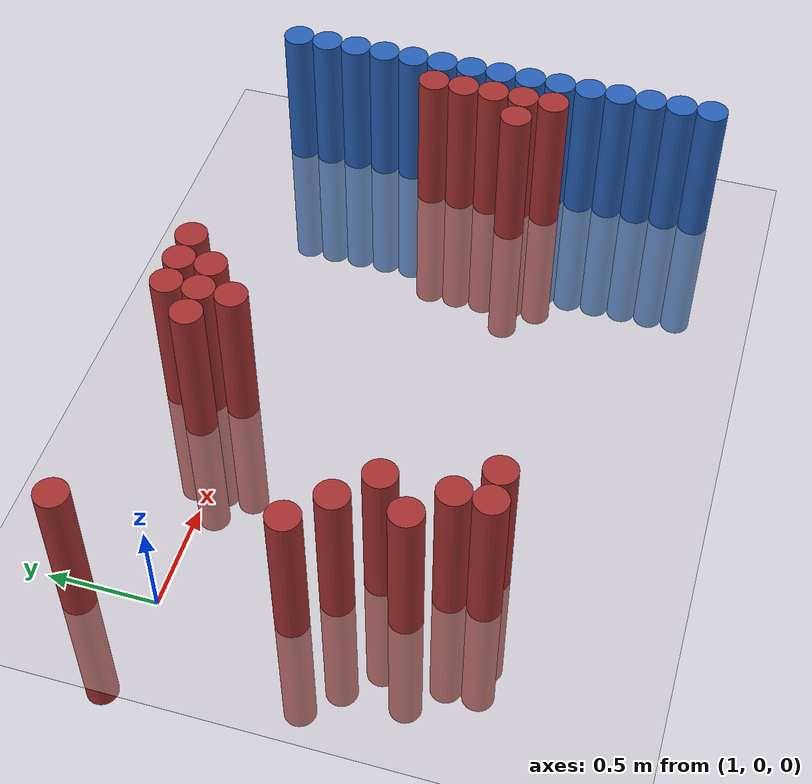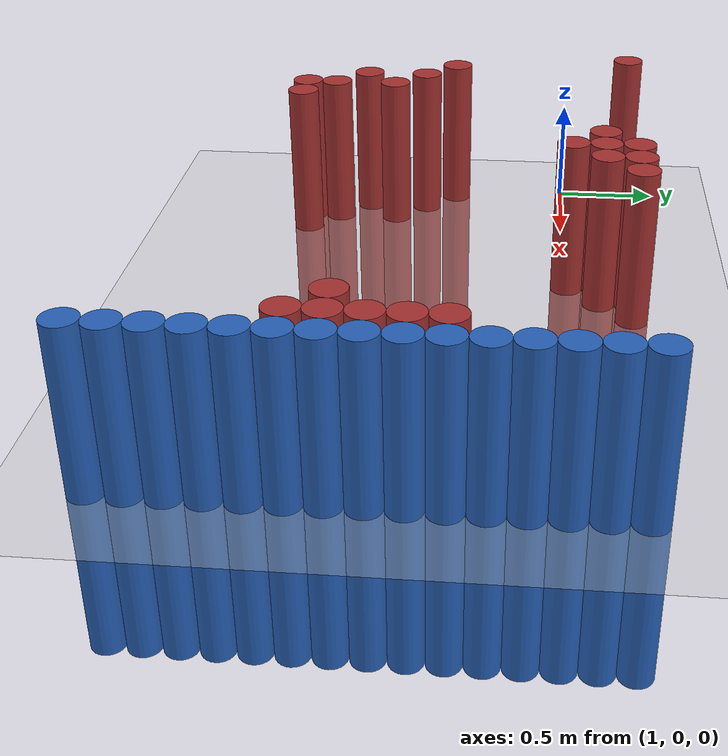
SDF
<sdf version="1.6">
 <world name="default">
  <model name="ground_plane">
   <static>1</static>
   <link name="link">
    <collision name="collision">
     <geometry><plane><normal>0 0 1</normal><size>100 100</size></plane></geometry>
     <surface><friction><ode><mu>100</mu><mu2>50</mu2></ode></friction></surface>
    </collision>
    <visual name="visual">
     <cast_shadows>0</cast_shadows>
     <geometry><plane><normal>0 0 1</normal><size>100 100</size></plane></geometry>
     <material>
      <script><uri>file://media/materials/scripts/gazebo.material</uri><name>Gazebo/Grey</name></script>
     </material>
    </visual>
   </link>
  </model>
  <model name="unit_cylinder_92">
   <static>1</static>
   <pose>3.925000 -1.625000 0.000000 0.000000 0.000000 0.000000</pose>
   <link name="link">
    <inertial>
     <mass>1</mass>
     <inertia><ixx>0.145833</ixx><ixy>0</ixy><ixz>0</ixz><iyy>0.145833</iyy><iyz>0</iyz><izz>0.125</izz></inertia>
    </inertial>
    <collision name="collision">
     <geometry><cylinder><radius>0.075000</radius><length>1.5</length></cylinder></geometry>
    </collision>
    <visual name="visual">
     <geometry><cylinder><radius>0.075000</radius><length>1.5</length></cylinder></geometry>
     <material>
      <ambient>0.152000 0.379000 0.720000 1</ambient>
      <diffuse>0.152000 0.379000 0.720000 1</diffuse>
     </material>
     <material>
      <script><name>Gazebo/Grey</name><uri>file://media/materials/scripts/gazebo.material</uri></script>
     </material>
    </visual>
   </link>
  </model>
  <model name="unit_cylinder_94">
   <static>1</static>
   <pose>3.925000 -1.475000 0.000000 0.000000 0.000000 0.000000</pose>
   <link name="link">
    <inertial>
     <mass>1</mass>
     <inertia><ixx>0.145833</ixx><ixy>0</ixy><ixz>0</ixz><iyy>0.145833</iyy><iyz>0</iyz><izz>0.125</izz></inertia>
    </inertial>
    <collision name="collision">
     <geometry><cylinder><radius>0.075000</radius><length>1.5</length></cylinder></geometry>
    </collision>
    <visual name="visual">
     <geometry><cylinder><radius>0.075000</radius><length>1.5</length></cylinder></geometry>
     <material>
      <ambient>0.152000 0.379000 0.720000 1</ambient>
      <diffuse>0.152000 0.379000 0.720000 1</diffuse>
     </material>
     <material>
      <script><name>Gazebo/Grey</name><uri>file://media/materials/scripts/gazebo.material</uri></script>
     </material>
    </visual>
   </link>
  </model>
  <model name="unit_cylinder_96">
   <static>1</static>
   <pose>3.925000 -1.325000 0.000000 0.000000 0.000000 0.000000</pose>
   <link name="link">
    <inertial>
     <mass>1</mass>
     <inertia><ixx>0.145833</ixx><ixy>0</ixy><ixz>0</ixz><iyy>0.145833</iyy><iyz>0</iyz><izz>0.125</izz></inertia>
    </inertial>
    <collision name="collision">
     <geometry><cylinder><radius>0.075000</radius><length>1.5</length></cylinder></geometry>
    </collision>
    <visual name="visual">
     <geometry><cylinder><radius>0.075000</radius><length>1.5</length></cylinder></geometry>
     <material>
      <ambient>0.152000 0.379000 0.720000 1</ambient>
      <diffuse>0.152000 0.379000 0.720000 1</diffuse>
     </material>
     <material>
      <script><name>Gazebo/Grey</name><uri>file://media/materials/scripts/gazebo.material</uri></script>
     </material>
    </visual>
   </link>
  </model>
  <model name="unit_cylinder_98">
   <static>1</static>
   <pose>3.925000 -1.175000 0.000000 0.000000 0.000000 0.000000</pose>
   <link name="link">
    <inertial>
     <mass>1</mass>
     <inertia><ixx>0.145833</ixx><ixy>0</ixy><ixz>0</ixz><iyy>0.145833</iyy><iyz>0</iyz><izz>0.125</izz></inertia>
    </inertial>
    <collision name="collision">
     <geometry><cylinder><radius>0.075000</radius><length>1.5</length></cylinder></geometry>
    </collision>
    <visual name="visual">
     <geometry><cylinder><radius>0.075000</radius><length>1.5</length></cylinder></geometry>
     <material>
      <ambient>0.152000 0.379000 0.720000 1</ambient>
      <diffuse>0.152000 0.379000 0.720000 1</diffuse>
     </material>
     <material>
      <script><name>Gazebo/Grey</name><uri>file://media/materials/scripts/gazebo.material</uri></script>
     </material>
    </visual>
   </link>
  </model>
  <model name="unit_cylinder_100">
   <static>1</static>
   <pose>3.925000 -1.025000 0.000000 0.000000 0.000000 0.000000</pose>
   <link name="link">
    <inertial>
     <mass>1</mass>
     <inertia><ixx>0.145833</ixx><ixy>0</ixy><ixz>0</ixz><iyy>0.145833</iyy><iyz>0</iyz><izz>0.125</izz></inertia>
    </inertial>
    <collision name="collision">
     <geometry><cylinder><radius>0.075000</radius><length>1.5</length></cylinder></geometry>
    </collision>
    <visual name="visual">
     <geometry><cylinder><radius>0.075000</radius><length>1.5</length></cylinder></geometry>
     <material>
      <ambient>0.152000 0.379000 0.720000 1</ambient>
      <diffuse>0.152000 0.379000 0.720000 1</diffuse>
     </material>
     <material>
      <script><name>Gazebo/Grey</name><uri>file://media/materials/scripts/gazebo.material</uri></script>
     </material>
    </visual>
   </link>
  </model>
  <model name="unit_cylinder_102">
   <static>1</static>
   <pose>3.925000 -0.875000 0.000000 0.000000 0.000000 0.000000</pose>
   <link name="link">
    <inertial>
     <mass>1</mass>
     <inertia><ixx>0.145833</ixx><ixy>0</ixy><ixz>0</ixz><iyy>0.145833</iyy><iyz>0</iyz><izz>0.125</izz></inertia>
    </inertial>
    <collision name="collision">
     <geometry><cylinder><radius>0.075000</radius><length>1.5</length></cylinder></geometry>
    </collision>
    <visual name="visual">
     <geometry><cylinder><radius>0.075000</radius><length>1.5</length></cylinder></geometry>
     <material>
      <ambient>0.152000 0.379000 0.720000 1</ambient>
      <diffuse>0.152000 0.379000 0.720000 1</diffuse>
     </material>
     <material>
      <script><name>Gazebo/Grey</name><uri>file://media/materials/scripts/gazebo.material</uri></script>
     </material>
    </visual>
   </link>
  </model>
  <model name="unit_cylinder_104">
   <static>1</static>
   <pose>3.925000 -0.725000 0.000000 0.000000 0.000000 0.000000</pose>
   <link name="link">
    <inertial>
     <mass>1</mass>
     <inertia><ixx>0.145833</ixx><ixy>0</ixy><ixz>0</ixz><iyy>0.145833</iyy><iyz>0</iyz><izz>0.125</izz></inertia>
    </inertial>
    <collision name="collision">
     <geometry><cylinder><radius>0.075000</radius><length>1.5</length></cylinder></geometry>
    </collision>
    <visual name="visual">
     <geometry><cylinder><radius>0.075000</radius><length>1.5</length></cylinder></geometry>
     <material>
      <ambient>0.152000 0.379000 0.720000 1</ambient>
      <diffuse>0.152000 0.379000 0.720000 1</diffuse>
     </material>
     <material>
      <script><name>Gazebo/Grey</name><uri>file://media/materials/scripts/gazebo.material</uri></script>
     </material>
    </visual>
   </link>
  </model>
  <model name="unit_cylinder_106">
   <static>1</static>
   <pose>3.925000 -0.575000 0.000000 0.000000 0.000000 0.000000</pose>
   <link name="link">
    <inertial>
     <mass>1</mass>
     <inertia><ixx>0.145833</ixx><ixy>0</ixy><ixz>0</ixz><iyy>0.145833</iyy><iyz>0</iyz><izz>0.125</izz></inertia>
    </inertial>
    <collision name="collision">
     <geometry><cylinder><radius>0.075000</radius><length>1.5</length></cylinder></geometry>
    </collision>
    <visual name="visual">
     <geometry><cylinder><radius>0.075000</radius><length>1.5</length></cylinder></geometry>
     <material>
      <ambient>0.152000 0.379000 0.720000 1</ambient>
      <diffuse>0.152000 0.379000 0.720000 1</diffuse>
     </material>
     <material>
      <script><name>Gazebo/Grey</name><uri>file://media/materials/scripts/gazebo.material</uri></script>
     </material>
    </visual>
   </link>
  </model>
  <model name="unit_cylinder_108">
   <static>1</static>
   <pose>3.925000 -0.425000 0.000000 0.000000 0.000000 0.000000</pose>
   <link name="link">
    <inertial>
     <mass>1</mass>
     <inertia><ixx>0.145833</ixx><ixy>0</ixy><ixz>0</ixz><iyy>0.145833</iyy><iyz>0</iyz><izz>0.125</izz></inertia>
    </inertial>
    <collision name="collision">
     <geometry><cylinder><radius>0.075000</radius><length>1.5</length></cylinder></geometry>
    </collision>
    <visual name="visual">
     <geometry><cylinder><radius>0.075000</radius><length>1.5</length></cylinder></geometry>
     <material>
      <ambient>0.152000 0.379000 0.720000 1</ambient>
      <diffuse>0.152000 0.379000 0.720000 1</diffuse>
     </material>
     <material>
      <script><name>Gazebo/Grey</name><uri>file://media/materials/scripts/gazebo.material</uri></script>
     </material>
    </visual>
   </link>
  </model>
  <model name="unit_cylinder_110">
   <static>1</static>
   <pose>3.925000 -0.275000 0.000000 0.000000 0.000000 0.000000</pose>
   <link name="link">
    <inertial>
     <mass>1</mass>
     <inertia><ixx>0.145833</ixx><ixy>0</ixy><ixz>0</ixz><iyy>0.145833</iyy><iyz>0</iyz><izz>0.125</izz></inertia>
    </inertial>
    <collision name="collision">
     <geometry><cylinder><radius>0.075000</radius><length>1.5</length></cylinder></geometry>
    </collision>
    <visual name="visual">
     <geometry><cylinder><radius>0.075000</radius><length>1.5</length></cylinder></geometry>
     <material>
      <ambient>0.152000 0.379000 0.720000 1</ambient>
      <diffuse>0.152000 0.379000 0.720000 1</diffuse>
     </material>
     <material>
      <script><name>Gazebo/Grey</name><uri>file://media/materials/scripts/gazebo.material</uri></script>
     </material>
    </visual>
   </link>
  </model>
  <model name="unit_cylinder_112">
   <static>1</static>
   <pose>3.925000 -0.125000 0.000000 0.000000 0.000000 0.000000</pose>
   <link name="link">
    <inertial>
     <mass>1</mass>
     <inertia><ixx>0.145833</ixx><ixy>0</ixy><ixz>0</ixz><iyy>0.145833</iyy><iyz>0</iyz><izz>0.125</izz></inertia>
    </inertial>
    <collision name="collision">
     <geometry><cylinder><radius>0.075000</radius><length>1.5</length></cylinder></geometry>
    </collision>
    <visual name="visual">
     <geometry><cylinder><radius>0.075000</radius><length>1.5</length></cylinder></geometry>
     <material>
      <ambient>0.152000 0.379000 0.720000 1</ambient>
      <diffuse>0.152000 0.379000 0.720000 1</diffuse>
     </material>
     <material>
      <script><name>Gazebo/Grey</name><uri>file://media/materials/scripts/gazebo.material</uri></script>
     </material>
    </visual>
   </link>
  </model>
  <model name="unit_cylinder_114">
   <static>1</static>
   <pose>3.925000 0.025000 0.000000 0.000000 0.000000 0.000000</pose>
   <link name="link">
    <inertial>
     <mass>1</mass>
     <inertia><ixx>0.145833</ixx><ixy>0</ixy><ixz>0</ixz><iyy>0.145833</iyy><iyz>0</iyz><izz>0.125</izz></inertia>
    </inertial>
    <collision name="collision">
     <geometry><cylinder><radius>0.075000</radius><length>1.5</length></cylinder></geometry>
    </collision>
    <visual name="visual">
     <geometry><cylinder><radius>0.075000</radius><length>1.5</length></cylinder></geometry>
     <material>
      <ambient>0.152000 0.379000 0.720000 1</ambient>
      <diffuse>0.152000 0.379000 0.720000 1</diffuse>
     </material>
     <material>
      <script><name>Gazebo/Grey</name><uri>file://media/materials/scripts/gazebo.material</uri></script>
     </material>
    </visual>
   </link>
  </model>
  <model name="unit_cylinder_116">
   <static>1</static>
   <pose>3.925000 0.175000 0.000000 0.000000 0.000000 0.000000</pose>
   <link name="link">
    <inertial>
     <mass>1</mass>
     <inertia><ixx>0.145833</ixx><ixy>0</ixy><ixz>0</ixz><iyy>0.145833</iyy><iyz>0</iyz><izz>0.125</izz></inertia>
    </inertial>
    <collision name="collision">
     <geometry><cylinder><radius>0.075000</radius><length>1.5</length></cylinder></geometry>
    </collision>
    <visual name="visual">
     <geometry><cylinder><radius>0.075000</radius><length>1.5</length></cylinder></geometry>
     <material>
      <ambient>0.152000 0.379000 0.720000 1</ambient>
      <diffuse>0.152000 0.379000 0.720000 1</diffuse>
     </material>
     <material>
      <script><name>Gazebo/Grey</name><uri>file://media/materials/scripts/gazebo.material</uri></script>
     </material>
    </visual>
   </link>
  </model>
  <model name="unit_cylinder_118">
   <static>1</static>
   <pose>3.925000 0.325000 0.000000 0.000000 0.000000 0.000000</pose>
   <link name="link">
    <inertial>
     <mass>1</mass>
     <inertia><ixx>0.145833</ixx><ixy>0</ixy><ixz>0</ixz><iyy>0.145833</iyy><iyz>0</iyz><izz>0.125</izz></inertia>
    </inertial>
    <collision name="collision">
     <geometry><cylinder><radius>0.075000</radius><length>1.5</length></cylinder></geometry>
    </collision>
    <visual name="visual">
     <geometry><cylinder><radius>0.075000</radius><length>1.5</length></cylinder></geometry>
     <material>
      <ambient>0.152000 0.379000 0.720000 1</ambient>
      <diffuse>0.152000 0.379000 0.720000 1</diffuse>
     </material>
     <material>
      <script><name>Gazebo/Grey</name><uri>file://media/materials/scripts/gazebo.material</uri></script>
     </material>
    </visual>
   </link>
  </model>
  <model name="unit_cylinder_319">
   <static>1</static>
   <pose>0.925000 0.325000 0.000000 0.000000 0.000000 0.000000</pose>
   <link name="link">
    <inertial>
     <mass>1</mass>
     <inertia><ixx>0.145833</ixx><ixy>0</ixy><ixz>0</ixz><iyy>0.145833</iyy><iyz>0</iyz><izz>0.125</izz></inertia>
    </inertial>
    <collision name="collision">
     <geometry><cylinder><radius>0.075000</radius><length>1.5</length></cylinder></geometry>
    </collision>
    <visual name="visual">
     <geometry><cylinder><radius>0.075000</radius><length>1.5</length></cylinder></geometry>
     <material>
      <ambient>0.648000 0.192000 0.192000 1</ambient>
      <diffuse>0.648000 0.192000 0.192000 1</diffuse>
     </material>
     <material>
      <script><name>Gazebo/Grey</name><uri>file://media/materials/scripts/gazebo.material</uri></script>
     </material>
    </visual>
   </link>
  </model>
  <model name="unit_cylinder_324">
   <static>1</static>
   <pose>1.075000 -0.575000 0.000000 0.000000 0.000000 0.000000</pose>
   <link name="link">
    <inertial>
     <mass>1</mass>
     <inertia><ixx>0.145833</ixx><ixy>0</ixy><ixz>0</ixz><iyy>0.145833</iyy><iyz>0</iyz><izz>0.125</izz></inertia>
    </inertial>
    <collision name="collision">
     <geometry><cylinder><radius>0.075000</radius><length>1.5</length></cylinder></geometry>
    </collision>
    <visual name="visual">
     <geometry><cylinder><radius>0.075000</radius><length>1.5</length></cylinder></geometry>
     <material>
      <ambient>0.648000 0.192000 0.192000 1</ambient>
      <diffuse>0.648000 0.192000 0.192000 1</diffuse>
     </material>
     <material>
      <script><name>Gazebo/Grey</name><uri>file://media/materials/scripts/gazebo.material</uri></script>
     </material>
    </visual>
   </link>
  </model>
  <model name="unit_cylinder_328">
   <static>1</static>
   <pose>1.225000 -1.025000 0.000000 0.000000 0.000000 0.000000</pose>
   <link name="link">
    <inertial>
     <mass>1</mass>
     <inertia><ixx>0.145833</ixx><ixy>0</ixy><ixz>0</ixz><iyy>0.145833</iyy><iyz>0</iyz><izz>0.125</izz></inertia>
    </inertial>
    <collision name="collision">
     <geometry><cylinder><radius>0.075000</radius><length>1.5</length></cylinder></geometry>
    </collision>
    <visual name="visual">
     <geometry><cylinder><radius>0.075000</radius><length>1.5</length></cylinder></geometry>
     <material>
      <ambient>0.648000 0.192000 0.192000 1</ambient>
      <diffuse>0.648000 0.192000 0.192000 1</diffuse>
     </material>
     <material>
      <script><name>Gazebo/Grey</name><uri>file://media/materials/scripts/gazebo.material</uri></script>
     </material>
    </visual>
   </link>
  </model>
  <model name="unit_cylinder_329">
   <static>1</static>
   <pose>1.225000 -0.725000 0.000000 0.000000 0.000000 0.000000</pose>
   <link name="link">
    <inertial>
     <mass>1</mass>
     <inertia><ixx>0.145833</ixx><ixy>0</ixy><ixz>0</ixz><iyy>0.145833</iyy><iyz>0</iyz><izz>0.125</izz></inertia>
    </inertial>
    <collision name="collision">
     <geometry><cylinder><radius>0.075000</radius><length>1.5</length></cylinder></geometry>
    </collision>
    <visual name="visual">
     <geometry><cylinder><radius>0.075000</radius><length>1.5</length></cylinder></geometry>
     <material>
      <ambient>0.648000 0.192000 0.192000 1</ambient>
      <diffuse>0.648000 0.192000 0.192000 1</diffuse>
     </material>
     <material>
      <script><name>Gazebo/Grey</name><uri>file://media/materials/scripts/gazebo.material</uri></script>
     </material>
    </visual>
   </link>
  </model>
  <model name="unit_cylinder_333">
   <static>1</static>
   <pose>1.375000 -1.325000 0.000000 0.000000 0.000000 0.000000</pose>
   <link name="link">
    <inertial>
     <mass>1</mass>
     <inertia><ixx>0.145833</ixx><ixy>0</ixy><ixz>0</ixz><iyy>0.145833</iyy><iyz>0</iyz><izz>0.125</izz></inertia>
    </inertial>
    <collision name="collision">
     <geometry><cylinder><radius>0.075000</radius><length>1.5</length></cylinder></geometry>
    </collision>
    <visual name="visual">
     <geometry><cylinder><radius>0.075000</radius><length>1.5</length></cylinder></geometry>
     <material>
      <ambient>0.648000 0.192000 0.192000 1</ambient>
      <diffuse>0.648000 0.192000 0.192000 1</diffuse>
     </material>
     <material>
      <script><name>Gazebo/Grey</name><uri>file://media/materials/scripts/gazebo.material</uri></script>
     </material>
    </visual>
   </link>
  </model>
  <model name="unit_cylinder_334">
   <static>1</static>
   <pose>1.375000 -1.175000 0.000000 0.000000 0.000000 0.000000</pose>
   <link name="link">
    <inertial>
     <mass>1</mass>
     <inertia><ixx>0.145833</ixx><ixy>0</ixy><ixz>0</ixz><iyy>0.145833</iyy><iyz>0</iyz><izz>0.125</izz></inertia>
    </inertial>
    <collision name="collision">
     <geometry><cylinder><radius>0.075000</radius><length>1.5</length></cylinder></geometry>
    </collision>
    <visual name="visual">
     <geometry><cylinder><radius>0.075000</radius><length>1.5</length></cylinder></geometry>
     <material>
      <ambient>0.648000 0.192000 0.192000 1</ambient>
      <diffuse>0.648000 0.192000 0.192000 1</diffuse>
     </material>
     <material>
      <script><name>Gazebo/Grey</name><uri>file://media/materials/scripts/gazebo.material</uri></script>
     </material>
    </visual>
   </link>
  </model>
  <model name="unit_cylinder_335">
   <static>1</static>
   <pose>1.375000 -0.875000 0.000000 0.000000 0.000000 0.000000</pose>
   <link name="link">
    <inertial>
     <mass>1</mass>
     <inertia><ixx>0.145833</ixx><ixy>0</ixy><ixz>0</ixz><iyy>0.145833</iyy><iyz>0</iyz><izz>0.125</izz></inertia>
    </inertial>
    <collision name="collision">
     <geometry><cylinder><radius>0.075000</radius><length>1.5</length></cylinder></geometry>
    </collision>
    <visual name="visual">
     <geometry><cylinder><radius>0.075000</radius><length>1.5</length></cylinder></geometry>
     <material>
      <ambient>0.648000 0.192000 0.192000 1</ambient>
      <diffuse>0.648000 0.192000 0.192000 1</diffuse>
     </material>
     <material>
      <script><name>Gazebo/Grey</name><uri>file://media/materials/scripts/gazebo.material</uri></script>
     </material>
    </visual>
   </link>
  </model>
  <model name="unit_cylinder_338">
   <static>1</static>
   <pose>1.525000 -1.325000 0.000000 0.000000 0.000000 0.000000</pose>
   <link name="link">
    <inertial>
     <mass>1</mass>
     <inertia><ixx>0.145833</ixx><ixy>0</ixy><ixz>0</ixz><iyy>0.145833</iyy><iyz>0</iyz><izz>0.125</izz></inertia>
    </inertial>
    <collision name="collision">
     <geometry><cylinder><radius>0.075000</radius><length>1.5</length></cylinder></geometry>
    </collision>
    <visual name="visual">
     <geometry><cylinder><radius>0.075000</radius><length>1.5</length></cylinder></geometry>
     <material>
      <ambient>0.648000 0.192000 0.192000 1</ambient>
      <diffuse>0.648000 0.192000 0.192000 1</diffuse>
     </material>
     <material>
      <script><name>Gazebo/Grey</name><uri>file://media/materials/scripts/gazebo.material</uri></script>
     </material>
    </visual>
   </link>
  </model>
  <model name="unit_cylinder_346">
   <static>1</static>
   <pose>1.975000 0.175000 0.000000 0.000000 0.000000 0.000000</pose>
   <link name="link">
    <inertial>
     <mass>1</mass>
     <inertia><ixx>0.145833</ixx><ixy>0</ixy><ixz>0</ixz><iyy>0.145833</iyy><iyz>0</iyz><izz>0.125</izz></inertia>
    </inertial>
    <collision name="collision">
     <geometry><cylinder><radius>0.075000</radius><length>1.5</length></cylinder></geometry>
    </collision>
    <visual name="visual">
     <geometry><cylinder><radius>0.075000</radius><length>1.5</length></cylinder></geometry>
     <material>
      <ambient>0.648000 0.192000 0.192000 1</ambient>
      <diffuse>0.648000 0.192000 0.192000 1</diffuse>
     </material>
     <material>
      <script><name>Gazebo/Grey</name><uri>file://media/materials/scripts/gazebo.material</uri></script>
     </material>
    </visual>
   </link>
  </model>
  <model name="unit_cylinder_353">
   <static>1</static>
   <pose>2.125000 0.025000 0.000000 0.000000 0.000000 0.000000</pose>
   <link name="link">
    <inertial>
     <mass>1</mass>
     <inertia><ixx>0.145833</ixx><ixy>0</ixy><ixz>0</ixz><iyy>0.145833</iyy><iyz>0</iyz><izz>0.125</izz></inertia>
    </inertial>
    <collision name="collision">
     <geometry><cylinder><radius>0.075000</radius><length>1.5</length></cylinder></geometry>
    </collision>
    <visual name="visual">
     <geometry><cylinder><radius>0.075000</radius><length>1.5</length></cylinder></geometry>
     <material>
      <ambient>0.648000 0.192000 0.192000 1</ambient>
      <diffuse>0.648000 0.192000 0.192000 1</diffuse>
     </material>
     <material>
      <script><name>Gazebo/Grey</name><uri>file://media/materials/scripts/gazebo.material</uri></script>
     </material>
    </visual>
   </link>
  </model>
  <model name="unit_cylinder_354">
   <static>1</static>
   <pose>2.125000 0.175000 0.000000 0.000000 0.000000 0.000000</pose>
   <link name="link">
    <inertial>
     <mass>1</mass>
     <inertia><ixx>0.145833</ixx><ixy>0</ixy><ixz>0</ixz><iyy>0.145833</iyy><iyz>0</iyz><izz>0.125</izz></inertia>
    </inertial>
    <collision name="collision">
     <geometry><cylinder><radius>0.075000</radius><length>1.5</length></cylinder></geometry>
    </collision>
    <visual name="visual">
     <geometry><cylinder><radius>0.075000</radius><length>1.5</length></cylinder></geometry>
     <material>
      <ambient>0.648000 0.192000 0.192000 1</ambient>
      <diffuse>0.648000 0.192000 0.192000 1</diffuse>
     </material>
     <material>
      <script><name>Gazebo/Grey</name><uri>file://media/materials/scripts/gazebo.material</uri></script>
     </material>
    </visual>
   </link>
  </model>
  <model name="unit_cylinder_355">
   <static>1</static>
   <pose>2.125000 0.325000 0.000000 0.000000 0.000000 0.000000</pose>
   <link name="link">
    <inertial>
     <mass>1</mass>
     <inertia><ixx>0.145833</ixx><ixy>0</ixy><ixz>0</ixz><iyy>0.145833</iyy><iyz>0</iyz><izz>0.125</izz></inertia>
    </inertial>
    <collision name="collision">
     <geometry><cylinder><radius>0.075000</radius><length>1.5</length></cylinder></geometry>
    </collision>
    <visual name="visual">
     <geometry><cylinder><radius>0.075000</radius><length>1.5</length></cylinder></geometry>
     <material>
      <ambient>0.648000 0.192000 0.192000 1</ambient>
      <diffuse>0.648000 0.192000 0.192000 1</diffuse>
     </material>
     <material>
      <script><name>Gazebo/Grey</name><uri>file://media/materials/scripts/gazebo.material</uri></script>
     </material>
    </visual>
   </link>
  </model>
  <model name="unit_cylinder_358">
   <static>1</static>
   <pose>2.275000 0.175000 0.000000 0.000000 0.000000 0.000000</pose>
   <link name="link">
    <inertial>
     <mass>1</mass>
     <inertia><ixx>0.145833</ixx><ixy>0</ixy><ixz>0</ixz><iyy>0.145833</iyy><iyz>0</iyz><izz>0.125</izz></inertia>
    </inertial>
    <collision name="collision">
     <geometry><cylinder><radius>0.075000</radius><length>1.5</length></cylinder></geometry>
    </collision>
    <visual name="visual">
     <geometry><cylinder><radius>0.075000</radius><length>1.5</length></cylinder></geometry>
     <material>
      <ambient>0.648000 0.192000 0.192000 1</ambient>
      <diffuse>0.648000 0.192000 0.192000 1</diffuse>
     </material>
     <material>
      <script><name>Gazebo/Grey</name><uri>file://media/materials/scripts/gazebo.material</uri></script>
     </material>
    </visual>
   </link>
  </model>
  <model name="unit_cylinder_359">
   <static>1</static>
   <pose>2.275000 0.325000 0.000000 0.000000 0.000000 0.000000</pose>
   <link name="link">
    <inertial>
     <mass>1</mass>
     <inertia><ixx>0.145833</ixx><ixy>0</ixy><ixz>0</ixz><iyy>0.145833</iyy><iyz>0</iyz><izz>0.125</izz></inertia>
    </inertial>
    <collision name="collision">
     <geometry><cylinder><radius>0.075000</radius><length>1.5</length></cylinder></geometry>
    </collision>
    <visual name="visual">
     <geometry><cylinder><radius>0.075000</radius><length>1.5</length></cylinder></geometry>
     <material>
      <ambient>0.648000 0.192000 0.192000 1</ambient>
      <diffuse>0.648000 0.192000 0.192000 1</diffuse>
     </material>
     <material>
      <script><name>Gazebo/Grey</name><uri>file://media/materials/scripts/gazebo.material</uri></script>
     </material>
    </visual>
   </link>
  </model>
  <model name="unit_cylinder_361">
   <static>1</static>
   <pose>2.425000 0.325000 0.000000 0.000000 0.000000 0.000000</pose>
   <link name="link">
    <inertial>
     <mass>1</mass>
     <inertia><ixx>0.145833</ixx><ixy>0</ixy><ixz>0</ixz><iyy>0.145833</iyy><iyz>0</iyz><izz>0.125</izz></inertia>
    </inertial>
    <collision name="collision">
     <geometry><cylinder><radius>0.075000</radius><length>1.5</length></cylinder></geometry>
    </collision>
    <visual name="visual">
     <geometry><cylinder><radius>0.075000</radius><length>1.5</length></cylinder></geometry>
     <material>
      <ambient>0.648000 0.192000 0.192000 1</ambient>
      <diffuse>0.648000 0.192000 0.192000 1</diffuse>
     </material>
     <material>
      <script><name>Gazebo/Grey</name><uri>file://media/materials/scripts/gazebo.material</uri></script>
     </material>
    </visual>
   </link>
  </model>
  <model name="unit_cylinder_364">
   <static>1</static>
   <pose>3.625000 -0.875000 0.000000 0.000000 0.000000 0.000000</pose>
   <link name="link">
    <inertial>
     <mass>1</mass>
     <inertia><ixx>0.145833</ixx><ixy>0</ixy><ixz>0</ixz><iyy>0.145833</iyy><iyz>0</iyz><izz>0.125</izz></inertia>
    </inertial>
    <collision name="collision">
     <geometry><cylinder><radius>0.075000</radius><length>1.5</length></cylinder></geometry>
    </collision>
    <visual name="visual">
     <geometry><cylinder><radius>0.075000</radius><length>1.5</length></cylinder></geometry>
     <material>
      <ambient>0.648000 0.192000 0.192000 1</ambient>
      <diffuse>0.648000 0.192000 0.192000 1</diffuse>
     </material>
     <material>
      <script><name>Gazebo/Grey</name><uri>file://media/materials/scripts/gazebo.material</uri></script>
     </material>
    </visual>
   </link>
  </model>
  <model name="unit_cylinder_371">
   <static>1</static>
   <pose>3.775000 -1.025000 0.000000 0.000000 0.000000 0.000000</pose>
   <link name="link">
    <inertial>
     <mass>1</mass>
     <inertia><ixx>0.145833</ixx><ixy>0</ixy><ixz>0</ixz><iyy>0.145833</iyy><iyz>0</iyz><izz>0.125</izz></inertia>
    </inertial>
    <collision name="collision">
     <geometry><cylinder><radius>0.075000</radius><length>1.5</length></cylinder></geometry>
    </collision>
    <visual name="visual">
     <geometry><cylinder><radius>0.075000</radius><length>1.5</length></cylinder></geometry>
     <material>
      <ambient>0.648000 0.192000 0.192000 1</ambient>
      <diffuse>0.648000 0.192000 0.192000 1</diffuse>
     </material>
     <material>
      <script><name>Gazebo/Grey</name><uri>file://media/materials/scripts/gazebo.material</uri></script>
     </material>
    </visual>
   </link>
  </model>
  <model name="unit_cylinder_372">
   <static>1</static>
   <pose>3.775000 -0.875000 0.000000 0.000000 0.000000 0.000000</pose>
   <link name="link">
    <inertial>
     <mass>1</mass>
     <inertia><ixx>0.145833</ixx><ixy>0</ixy><ixz>0</ixz><iyy>0.145833</iyy><iyz>0</iyz><izz>0.125</izz></inertia>
    </inertial>
    <collision name="collision">
     <geometry><cylinder><radius>0.075000</radius><length>1.5</length></cylinder></geometry>
    </collision>
    <visual name="visual">
     <geometry><cylinder><radius>0.075000</radius><length>1.5</length></cylinder></geometry>
     <material>
      <ambient>0.648000 0.192000 0.192000 1</ambient>
      <diffuse>0.648000 0.192000 0.192000 1</diffuse>
     </material>
     <material>
      <script><name>Gazebo/Grey</name><uri>file://media/materials/scripts/gazebo.material</uri></script>
     </material>
    </visual>
   </link>
  </model>
  <model name="unit_cylinder_373">
   <static>1</static>
   <pose>3.775000 -0.725000 0.000000 0.000000 0.000000 0.000000</pose>
   <link name="link">
    <inertial>
     <mass>1</mass>
     <inertia><ixx>0.145833</ixx><ixy>0</ixy><ixz>0</ixz><iyy>0.145833</iyy><iyz>0</iyz><izz>0.125</izz></inertia>
    </inertial>
    <collision name="collision">
     <geometry><cylinder><radius>0.075000</radius><length>1.5</length></cylinder></geometry>
    </collision>
    <visual name="visual">
     <geometry><cylinder><radius>0.075000</radius><length>1.5</length></cylinder></geometry>
     <material>
      <ambient>0.648000 0.192000 0.192000 1</ambient>
      <diffuse>0.648000 0.192000 0.192000 1</diffuse>
     </material>
     <material>
      <script><name>Gazebo/Grey</name><uri>file://media/materials/scripts/gazebo.material</uri></script>
     </material>
    </visual>
   </link>
  </model>
  <model name="unit_cylinder_374">
   <static>1</static>
   <pose>3.775000 -0.575000 0.000000 0.000000 0.000000 0.000000</pose>
   <link name="link">
    <inertial>
     <mass>1</mass>
     <inertia><ixx>0.145833</ixx><ixy>0</ixy><ixz>0</ixz><iyy>0.145833</iyy><iyz>0</iyz><izz>0.125</izz></inertia>
    </inertial>
    <collision name="collision">
     <geometry><cylinder><radius>0.075000</radius><length>1.5</length></cylinder></geometry>
    </collision>
    <visual name="visual">
     <geometry><cylinder><radius>0.075000</radius><length>1.5</length></cylinder></geometry>
     <material>
      <ambient>0.648000 0.192000 0.192000 1</ambient>
      <diffuse>0.648000 0.192000 0.192000 1</diffuse>
     </material>
     <material>
      <script><name>Gazebo/Grey</name><uri>file://media/materials/scripts/gazebo.material</uri></script>
     </material>
    </visual>
   </link>
  </model>
  <model name="unit_cylinder_375">
   <static>1</static>
   <pose>3.775000 -0.425000 0.000000 0.000000 0.000000 0.000000</pose>
   <link name="link">
    <inertial>
     <mass>1</mass>
     <inertia><ixx>0.145833</ixx><ixy>0</ixy><ixz>0</ixz><iyy>0.145833</iyy><iyz>0</iyz><izz>0.125</izz></inertia>
    </inertial>
    <collision name="collision">
     <geometry><cylinder><radius>0.075000</radius><length>1.5</length></cylinder></geometry>
    </collision>
    <visual name="visual">
     <geometry><cylinder><radius>0.075000</radius><length>1.5</length></cylinder></geometry>
     <material>
      <ambient>0.648000 0.192000 0.192000 1</ambient>
      <diffuse>0.648000 0.192000 0.192000 1</diffuse>
     </material>
     <material>
      <script><name>Gazebo/Grey</name><uri>file://media/materials/scripts/gazebo.material</uri></script>
     </material>
    </visual>
   </link>
  </model>
  <model name="unit_cylinder_392">
   <static>1</static>
   <pose>3.925000 -1.775000 0.000000 0.000000 0.000000 0.000000</pose>
   <link name="link">
    <inertial>
     <mass>1</mass>
     <inertia><ixx>0.145833</ixx><ixy>0</ixy><ixz>0</ixz><iyy>0.145833</iyy><iyz>0</iyz><izz>0.125</izz></inertia>
    </inertial>
    <collision name="collision">
     <geometry><cylinder><radius>0.075000</radius><length>1.5</length></cylinder></geometry>
    </collision>
    <visual name="visual">
     <geometry><cylinder><radius>0.075000</radius><length>1.5</length></cylinder></geometry>
     <material>
      <ambient>0.152000 0.379000 0.720000 1</ambient>
      <diffuse>0.152000 0.379000 0.720000 1</diffuse>
     </material>
     <material>
      <script><name>Gazebo/Grey</name><uri>file://media/materials/scripts/gazebo.material</uri></script>
     </material>
    </visual>
   </link>
  </model>
  <model name="unit_cylinder_393">
   <static>1</static>
   <pose>3.925000 -1.625000 0.000000 0.000000 0.000000 0.000000</pose>
   <link name="link">
    <inertial>
     <mass>1</mass>
     <inertia><ixx>0.145833</ixx><ixy>0</ixy><ixz>0</ixz><iyy>0.145833</iyy><iyz>0</iyz><izz>0.125</izz></inertia>
    </inertial>
    <collision name="collision">
     <geometry><cylinder><radius>0.075000</radius><length>1.5</length></cylinder></geometry>
    </collision>
    <visual name="visual">
     <geometry><cylinder><radius>0.075000</radius><length>1.5</length></cylinder></geometry>
     <material>
      <ambient>0.152000 0.379000 0.720000 1</ambient>
      <diffuse>0.152000 0.379000 0.720000 1</diffuse>
     </material>
     <material>
      <script><name>Gazebo/Grey</name><uri>file://media/materials/scripts/gazebo.material</uri></script>
     </material>
    </visual>
   </link>
  </model>
  <model name="unit_cylinder_394">
   <static>1</static>
   <pose>3.925000 -1.475000 0.000000 0.000000 0.000000 0.000000</pose>
   <link name="link">
    <inertial>
     <mass>1</mass>
     <inertia><ixx>0.145833</ixx><ixy>0</ixy><ixz>0</ixz><iyy>0.145833</iyy><iyz>0</iyz><izz>0.125</izz></inertia>
    </inertial>
    <collision name="collision">
     <geometry><cylinder><radius>0.075000</radius><length>1.5</length></cylinder></geometry>
    </collision>
    <visual name="visual">
     <geometry><cylinder><radius>0.075000</radius><length>1.5</length></cylinder></geometry>
     <material>
      <ambient>0.152000 0.379000 0.720000 1</ambient>
      <diffuse>0.152000 0.379000 0.720000 1</diffuse>
     </material>
     <material>
      <script><name>Gazebo/Grey</name><uri>file://media/materials/scripts/gazebo.material</uri></script>
     </material>
    </visual>
   </link>
  </model>
  <model name="unit_cylinder_395">
   <static>1</static>
   <pose>3.925000 -1.325000 0.000000 0.000000 0.000000 0.000000</pose>
   <link name="link">
    <inertial>
     <mass>1</mass>
     <inertia><ixx>0.145833</ixx><ixy>0</ixy><ixz>0</ixz><iyy>0.145833</iyy><iyz>0</iyz><izz>0.125</izz></inertia>
    </inertial>
    <collision name="collision">
     <geometry><cylinder><radius>0.075000</radius><length>1.5</length></cylinder></geometry>
    </collision>
    <visual name="visual">
     <geometry><cylinder><radius>0.075000</radius><length>1.5</length></cylinder></geometry>
     <material>
      <ambient>0.152000 0.379000 0.720000 1</ambient>
      <diffuse>0.152000 0.379000 0.720000 1</diffuse>
     </material>
     <material>
      <script><name>Gazebo/Grey</name><uri>file://media/materials/scripts/gazebo.material</uri></script>
     </material>
    </visual>
   </link>
  </model>
  <model name="unit_cylinder_396">
   <static>1</static>
   <pose>3.925000 -1.175000 0.000000 0.000000 0.000000 0.000000</pose>
   <link name="link">
    <inertial>
     <mass>1</mass>
     <inertia><ixx>0.145833</ixx><ixy>0</ixy><ixz>0</ixz><iyy>0.145833</iyy><iyz>0</iyz><izz>0.125</izz></inertia>
    </inertial>
    <collision name="collision">
     <geometry><cylinder><radius>0.075000</radius><length>1.5</length></cylinder></geometry>
    </collision>
    <visual name="visual">
     <geometry><cylinder><radius>0.075000</radius><length>1.5</length></cylinder></geometry>
     <material>
      <ambient>0.152000 0.379000 0.720000 1</ambient>
      <diffuse>0.152000 0.379000 0.720000 1</diffuse>
     </material>
     <material>
      <script><name>Gazebo/Grey</name><uri>file://media/materials/scripts/gazebo.material</uri></script>
     </material>
    </visual>
   </link>
  </model>
  <model name="unit_cylinder_397">
   <static>1</static>
   <pose>3.925000 -1.025000 0.000000 0.000000 0.000000 0.000000</pose>
   <link name="link">
    <inertial>
     <mass>1</mass>
     <inertia><ixx>0.145833</ixx><ixy>0</ixy><ixz>0</ixz><iyy>0.145833</iyy><iyz>0</iyz><izz>0.125</izz></inertia>
    </inertial>
    <collision name="collision">
     <geometry><cylinder><radius>0.075000</radius><length>1.5</length></cylinder></geometry>
    </collision>
    <visual name="visual">
     <geometry><cylinder><radius>0.075000</radius><length>1.5</length></cylinder></geometry>
     <material>
      <ambient>0.152000 0.379000 0.720000 1</ambient>
      <diffuse>0.152000 0.379000 0.720000 1</diffuse>
     </material>
     <material>
      <script><name>Gazebo/Grey</name><uri>file://media/materials/scripts/gazebo.material</uri></script>
     </material>
    </visual>
   </link>
  </model>
  <model name="unit_cylinder_398">
   <static>1</static>
   <pose>3.925000 -0.875000 0.000000 0.000000 0.000000 0.000000</pose>
   <link name="link">
    <inertial>
     <mass>1</mass>
     <inertia><ixx>0.145833</ixx><ixy>0</ixy><ixz>0</ixz><iyy>0.145833</iyy><iyz>0</iyz><izz>0.125</izz></inertia>
    </inertial>
    <collision name="collision">
     <geometry><cylinder><radius>0.075000</radius><length>1.5</length></cylinder></geometry>
    </collision>
    <visual name="visual">
     <geometry><cylinder><radius>0.075000</radius><length>1.5</length></cylinder></geometry>
     <material>
      <ambient>0.152000 0.379000 0.720000 1</ambient>
      <diffuse>0.152000 0.379000 0.720000 1</diffuse>
     </material>
     <material>
      <script><name>Gazebo/Grey</name><uri>file://media/materials/scripts/gazebo.material</uri></script>
     </material>
    </visual>
   </link>
  </model>
  <model name="unit_cylinder_399">
   <static>1</static>
   <pose>3.925000 -0.725000 0.000000 0.000000 0.000000 0.000000</pose>
   <link name="link">
    <inertial>
     <mass>1</mass>
     <inertia><ixx>0.145833</ixx><ixy>0</ixy><ixz>0</ixz><iyy>0.145833</iyy><iyz>0</iyz><izz>0.125</izz></inertia>
    </inertial>
    <collision name="collision">
     <geometry><cylinder><radius>0.075000</radius><length>1.5</length></cylinder></geometry>
    </collision>
    <visual name="visual">
     <geometry><cylinder><radius>0.075000</radius><length>1.5</length></cylinder></geometry>
     <material>
      <ambient>0.152000 0.379000 0.720000 1</ambient>
      <diffuse>0.152000 0.379000 0.720000 1</diffuse>
     </material>
     <material>
      <script><name>Gazebo/Grey</name><uri>file://media/materials/scripts/gazebo.material</uri></script>
     </material>
    </visual>
   </link>
  </model>
  <model name="unit_cylinder_400">
   <static>1</static>
   <pose>3.925000 -0.575000 0.000000 0.000000 0.000000 0.000000</pose>
   <link name="link">
    <inertial>
     <mass>1</mass>
     <inertia><ixx>0.145833</ixx><ixy>0</ixy><ixz>0</ixz><iyy>0.145833</iyy><iyz>0</iyz><izz>0.125</izz></inertia>
    </inertial>
    <collision name="collision">
     <geometry><cylinder><radius>0.075000</radius><length>1.5</length></cylinder></geometry>
    </collision>
    <visual name="visual">
     <geometry><cylinder><radius>0.075000</radius><length>1.5</length></cylinder></geometry>
     <material>
      <ambient>0.152000 0.379000 0.720000 1</ambient>
      <diffuse>0.152000 0.379000 0.720000 1</diffuse>
     </material>
     <material>
      <script><name>Gazebo/Grey</name><uri>file://media/materials/scripts/gazebo.material</uri></script>
     </material>
    </visual>
   </link>
  </model>
  <model name="unit_cylinder_401">
   <static>1</static>
   <pose>3.925000 -0.425000 0.000000 0.000000 0.000000 0.000000</pose>
   <link name="link">
    <inertial>
     <mass>1</mass>
     <inertia><ixx>0.145833</ixx><ixy>0</ixy><ixz>0</ixz><iyy>0.145833</iyy><iyz>0</iyz><izz>0.125</izz></inertia>
    </inertial>
    <collision name="collision">
     <geometry><cylinder><radius>0.075000</radius><length>1.5</length></cylinder></geometry>
    </collision>
    <visual name="visual">
     <geometry><cylinder><radius>0.075000</radius><length>1.5</length></cylinder></geometry>
     <material>
      <ambient>0.152000 0.379000 0.720000 1</ambient>
      <diffuse>0.152000 0.379000 0.720000 1</diffuse>
     </material>
     <material>
      <script><name>Gazebo/Grey</name><uri>file://media/materials/scripts/gazebo.material</uri></script>
     </material>
    </visual>
   </link>
  </model>
  <model name="unit_cylinder_402">
   <static>1</static>
   <pose>3.925000 -0.275000 0.000000 0.000000 0.000000 0.000000</pose>
   <link name="link">
    <inertial>
     <mass>1</mass>
     <inertia><ixx>0.145833</ixx><ixy>0</ixy><ixz>0</ixz><iyy>0.145833</iyy><iyz>0</iyz><izz>0.125</izz></inertia>
    </inertial>
    <collision name="collision">
     <geometry><cylinder><radius>0.075000</radius><length>1.5</length></cylinder></geometry>
    </collision>
    <visual name="visual">
     <geometry><cylinder><radius>0.075000</radius><length>1.5</length></cylinder></geometry>
     <material>
      <ambient>0.152000 0.379000 0.720000 1</ambient>
      <diffuse>0.152000 0.379000 0.720000 1</diffuse>
     </material>
     <material>
      <script><name>Gazebo/Grey</name><uri>file://media/materials/scripts/gazebo.material</uri></script>
     </material>
    </visual>
   </link>
  </model>
  <model name="unit_cylinder_403">
   <static>1</static>
   <pose>3.925000 -0.125000 0.000000 0.000000 0.000000 0.000000</pose>
   <link name="link">
    <inertial>
     <mass>1</mass>
     <inertia><ixx>0.145833</ixx><ixy>0</ixy><ixz>0</ixz><iyy>0.145833</iyy><iyz>0</iyz><izz>0.125</izz></inertia>
    </inertial>
    <collision name="collision">
     <geometry><cylinder><radius>0.075000</radius><length>1.5</length></cylinder></geometry>
    </collision>
    <visual name="visual">
     <geometry><cylinder><radius>0.075000</radius><length>1.5</length></cylinder></geometry>
     <material>
      <ambient>0.152000 0.379000 0.720000 1</ambient>
      <diffuse>0.152000 0.379000 0.720000 1</diffuse>
     </material>
     <material>
      <script><name>Gazebo/Grey</name><uri>file://media/materials/scripts/gazebo.material</uri></script>
     </material>
    </visual>
   </link>
  </model>
  <model name="unit_cylinder_404">
   <static>1</static>
   <pose>3.925000 0.025000 0.000000 0.000000 0.000000 0.000000</pose>
   <link name="link">
    <inertial>
     <mass>1</mass>
     <inertia><ixx>0.145833</ixx><ixy>0</ixy><ixz>0</ixz><iyy>0.145833</iyy><iyz>0</iyz><izz>0.125</izz></inertia>
    </inertial>
    <collision name="collision">
     <geometry><cylinder><radius>0.075000</radius><length>1.5</length></cylinder></geometry>
    </collision>
    <visual name="visual">
     <geometry><cylinder><radius>0.075000</radius><length>1.5</length></cylinder></geometry>
     <material>
      <ambient>0.152000 0.379000 0.720000 1</ambient>
      <diffuse>0.152000 0.379000 0.720000 1</diffuse>
     </material>
     <material>
      <script><name>Gazebo/Grey</name><uri>file://media/materials/scripts/gazebo.material</uri></script>
     </material>
    </visual>
   </link>
  </model>
  <model name="unit_cylinder_405">
   <static>1</static>
   <pose>3.925000 0.175000 0.000000 0.000000 0.000000 0.000000</pose>
   <link name="link">
    <inertial>
     <mass>1</mass>
     <inertia><ixx>0.145833</ixx><ixy>0</ixy><ixz>0</ixz><iyy>0.145833</iyy><iyz>0</iyz><izz>0.125</izz></inertia>
    </inertial>
    <collision name="collision">
     <geometry><cylinder><radius>0.075000</radius><length>1.5</length></cylinder></geometry>
    </collision>
    <visual name="visual">
     <geometry><cylinder><radius>0.075000</radius><length>1.5</length></cylinder></geometry>
     <material>
      <ambient>0.152000 0.379000 0.720000 1</ambient>
      <diffuse>0.152000 0.379000 0.720000 1</diffuse>
     </material>
     <material>
      <script><name>Gazebo/Grey</name><uri>file://media/materials/scripts/gazebo.material</uri></script>
     </material>
    </visual>
   </link>
  </model>
 </world>
</sdf>
